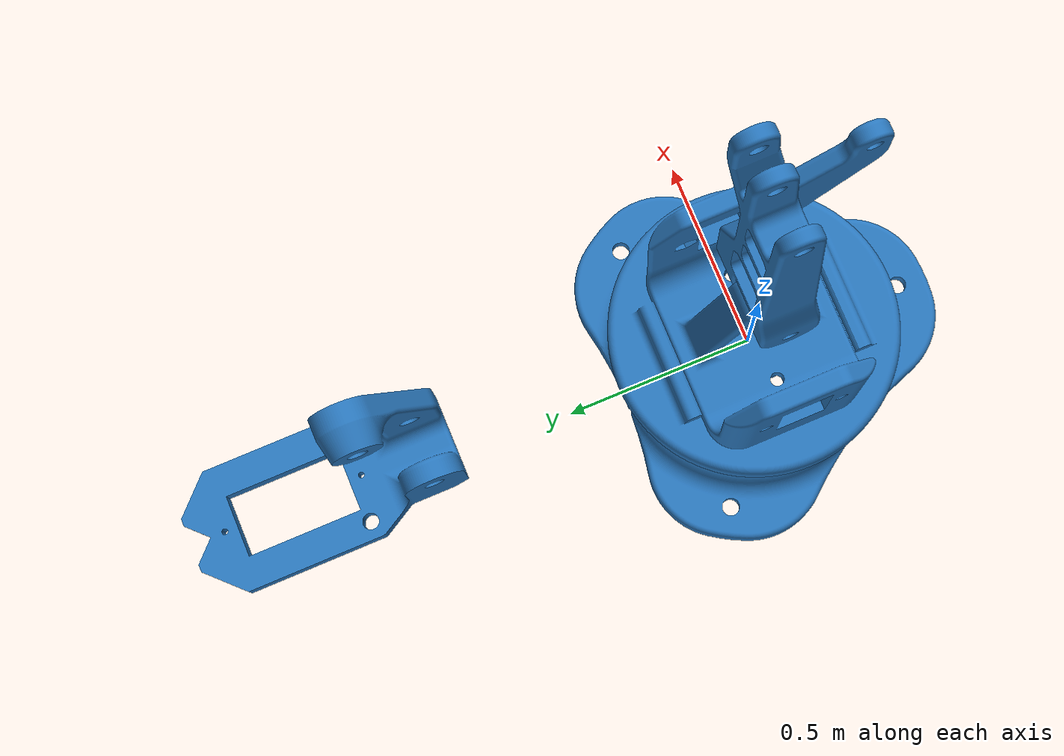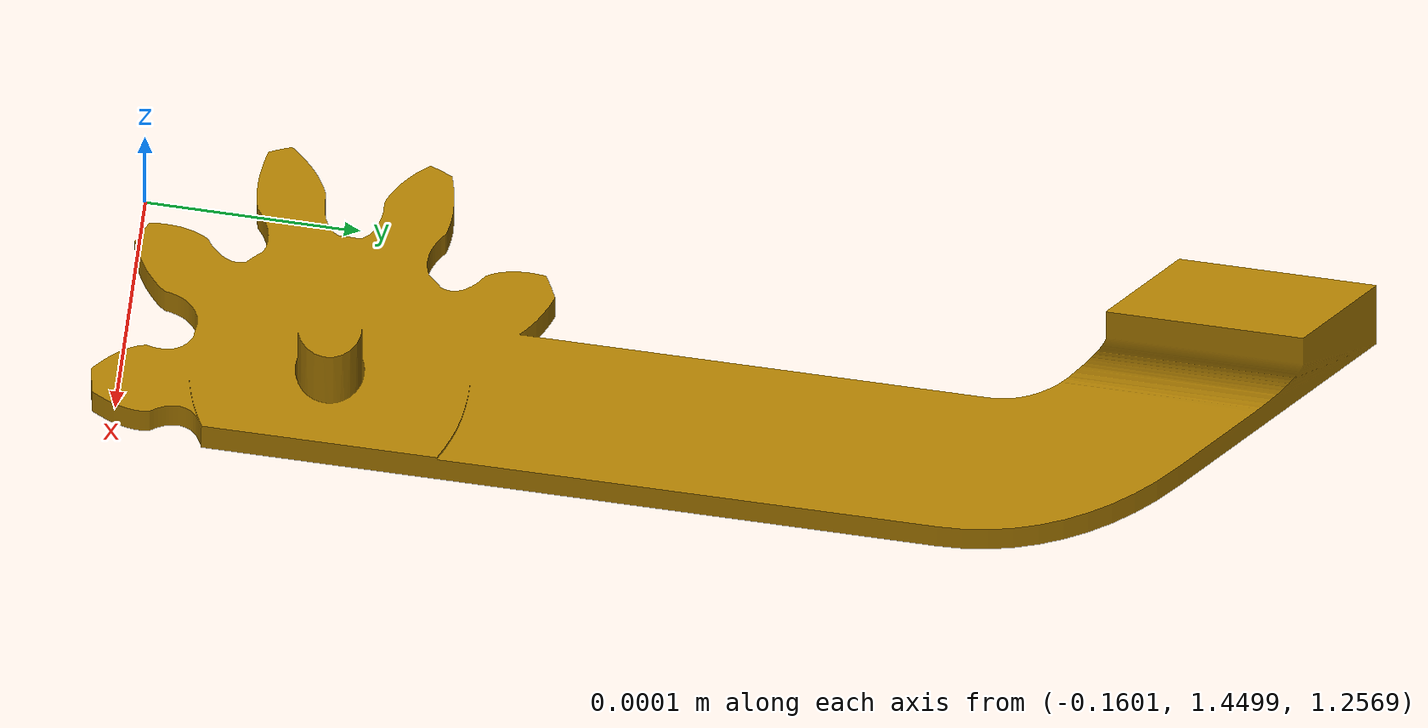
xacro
<?xml version="1.0"?>
<robot xmlns:xacro="http://www.ros.org/wiki/xacro" name="arduinobot">

    <!-- Useful Variables (Properties) -->
    <xacro:property name="PI" value="3.14159265359" />
    <xacro:property name="effort" value="30" />
    <xacro:property name="velocity" value="10" />

    <!--Useful macro -->
    <xacro:macro name ="default_inertial" params = "mass">
        <inertial>
            <mass value="${mass}"/>
            <inertia ixx = "1" iyy = "1" izz = "1" ixy = "0" ixz = "0" iyz = "0" />
        </inertial>
    </xacro:macro>

    <xacro:macro name = "default_transmission" params = "number">
        <transmission name = "joint_${number}">
            <type>transmission_interface/SimpleTransmission</type>
            <joint name = "joint_${number}">
                <hardwareInterface>hardware_interface/PositionJointInterface</hardwareInterface>
            </joint>
            <actuator name ="motor_${number}">
                <hardwareInterface>hardware_interface/PositionJointInterface</hardwareInterface>
                <mechanicalReduction>1</mechanicalReduction>
            </actuator>
        </transmission>
    </xacro:macro>

    <!-- Links -->
    <link name="world"/>

    <link name="base_link">
        <xacro:default_inertial mass = "1"/>
        <visual>
            <origin rpy="0 0 0" xyz="-0.5 -0.5 0"/>
            <geometry>
                <mesh filename="package://arduinobot_description/mesh/basement.STL" scale="0.01 0.01 0.01"/>
            </geometry>
            <material name="bluish" >
                <color rgba="0.1607843137254902 0.4627450980392157 0.7333333333333333 1.0" />
            </material>
        </visual>
        <collision>
            <origin rpy="0 0 0" xyz="-0.5 -0.5 0"/>
            <geometry>
                <mesh filename="package://arduinobot_description/mesh/basement.STL" scale="0.01 0.01 0.01"/>
            </geometry>
            <material name="bluish" >
                <color rgba="0.1607843137254902 0.4627450980392157 0.7333333333333333 1.0" />
            </material>
        </collision>
    </link>

    <link name="base_plate">
        <xacro:default_inertial mass = "0.1"/>
        <visual>
            <origin rpy="0 0 0" xyz="-0.39 -0.39 -0.56"/>
            <geometry>
                <mesh filename="package://arduinobot_description/mesh/base_plate.STL" scale="0.01 0.01 0.01"/>
            </geometry>
            <material name="bluish" >
                <color rgba="0.1607843137254902 0.4627450980392157 0.7333333333333333 1.0" />
            </material>
        </visual>
        <collision>
            <xacro:default_inertial mass = "0.1"/>
            <origin rpy="0 0 0" xyz="-0.39 -0.39 -0.56"/>
            <geometry>
                <mesh filename="package://arduinobot_description/mesh/base_plate.STL" scale="0.01 0.01 0.01"/>
            </geometry>
            <material name="bluish" >
                <color rgba="0.1607843137254902 0.4627450980392157 0.7333333333333333 1.0" />
            </material>
        </collision>
    </link>

    <link name="forward_drive_arm">
        <xacro:default_inertial mass = "0.1"/>
        <visual>
            <origin rpy=" 0 -${PI/2} ${PI/2}" xyz="0.19 0.06 -0.08"/>
            <geometry>
                <mesh filename="package://arduinobot_description/mesh/forward_drive_arm.STL" scale="0.01 0.01 0.01"/>
            </geometry>
            <material name="bluish" >
                <color rgba="0.1607843137254902 0.4627450980392157 0.7333333333333333 1.0" />
            </material>
        </visual>
        <collision>
            <origin rpy=" 0 -${PI/2} ${PI/2}" xyz="0.19 0.06 -0.08"/>
            <geometry>
                <mesh filename="package://arduinobot_description/mesh/forward_drive_arm.STL" scale="0.01 0.01 0.01"/>
            </geometry>
            <material name="bluish" >
                <color rgba="0.1607843137254902 0.4627450980392157 0.7333333333333333 1.0" />
            </material>
        </collision>
    </link>

    <link name="horizontal_arm">
        <xacro:default_inertial mass = "0.1"/>
        <visual>
            <origin rpy="${PI/2} 0 ${PI/2}" xyz="-0.03 -0.4 -0.06"/>
            <geometry>
                <mesh filename="package://arduinobot_description/mesh/horizontal_arm.STL" scale="0.01 0.01 0.01"/>
            </geometry>
            <material name="bluish" >
                <color rgba="0.1607843137254902 0.4627450980392157 0.7333333333333333 1.0" />
            </material>
        </visual>
        <collision>
            <origin rpy="${PI/2} 0 ${PI/2}" xyz="-0.03 -0.4 -0.06"/>
            <geometry>
                <mesh filename="package://arduinobot_description/mesh/horizontal_arm.STL" scale="0.01 0.01 0.01"/>
            </geometry>
            <material name="bluish" >
                <color rgba="0.1607843137254902 0.4627450980392157 0.7333333333333333 1.0" />
            </material>
        </collision>
    </link>

    <link name="claw_support">
        <xacro:default_inertial mass = "0.05"/>
        <visual>
            <origin rpy="0 0 ${PI/2}" xyz="0 -0.05 -0.15"/>
            <geometry>
                <mesh filename="package://arduinobot_description/mesh/claw_support.STL" scale="0.01 0.01 0.01"/>
            </geometry>
            <material name="bluish" >
                <color rgba="0.1607843137254902 0.4627450980392157 0.7333333333333333 1.0" />
            </material>
        </visual>
        <collision>
            <origin rpy="0 0 ${PI/2}" xyz="0 -0.05 -0.15"/>
            <geometry>
                <mesh filename="package://arduinobot_description/mesh/claw_support.STL" scale="0.01 0.01 0.01"/>
            </geometry>
            <material name="bluish" >
                <color rgba="0.1607843137254902 0.4627450980392157 0.7333333333333333 1.0" />
            </material>
        </collision>
    </link>

    <link name="gripper_right">
        <xacro:default_inertial mass = "0.01"/>
        <visual>
            <origin rpy="0 0 -${PI/2}" xyz="-0.1 0.50 -0.1"/>
            <geometry>
                <mesh filename="package://arduinobot_description/mesh/right_finger.STL" scale="0.01 0.01 0.01"/>
            </geometry>
            <material name="bronze" >
                <color rgba="0.6588235294117647 0.4745098039215686 0.0 1.0" />
            </material>
        </visual>
        <collision>
            <origin rpy="0 0 -${PI/2}" xyz="-0.1 0.50 -0.1"/>
            <geometry>
                <mesh filename="package://arduinobot_description/mesh/right_finger.STL" scale="0.01 0.01 0.01"/>
            </geometry>
            <material name="bronze" >
                <color rgba="0.6588235294117647 0.4745098039215686 0.0 1.0" />
            </material>
        </collision>
    </link>

    <link name="gripper_left">
        <visual>
            <xacro:default_inertial mass = "0.01"/>
            <origin rpy="0 0 -${PI/2}" xyz="-0.04 0.50 -0.1"/>
            <geometry>
                <mesh filename="package://arduinobot_description/mesh/left_finger.STL" scale="0.01 0.01 0.01"/>
            </geometry>
            <material name="bronze" >
                <color rgba="0.6588235294117647 0.4745098039215686 0.0 1.0" />
            </material>
        </visual>
        <collision>
            <origin rpy="0 0 -${PI/2}" xyz="-0.04 0.50 -0.1"/>
            <geometry>
                <mesh filename="package://arduinobot_description/mesh/left_finger.STL" scale="0.01 0.01 0.01"/>
            </geometry>
            <material name="bronze" >
                <color rgba="0.6588235294117647 0.4745098039215686 0.0 1.0" />
            </material>
        </collision>
    </link>

    <link name="tool_link"></link>

    <!-- Joints -->
    <joint name="virtual_joint" type="fixed">
        <parent link="world"/>
        <child link="base_link"/>
        <origin xyz="0 0 0" rpy="0 0 0"/>
    </joint>

    <joint name ="joint_1" type="revolute">
        <parent link="base_link"/>
        <child link = "base_plate"/>
        <origin xyz="0 0 0.307"/>
        <axis xyz="0 0 1"/>
        <limit lower="-${PI/2}" upper="${PI/2}" effort="${effort}" velocity="${velocity}"/>
    </joint>

    <joint name ="joint_2" type="revolute">
        <parent link="base_plate"/>
        <child link = "forward_drive_arm"/>
        <origin xyz="-0.02 0 0.35"/>
        <axis xyz="1 0 0"/>
        <limit lower="-${PI/2}" upper="${PI/2}" effort="${effort}" velocity="${velocity}"/>
    </joint>

    <joint name ="joint_3" type="revolute">
        <parent link="forward_drive_arm"/>
        <child link = "horizontal_arm"/>
        <origin xyz="0 0 0.8"/>
        <axis xyz="1 0 0"/>
        <limit lower="-${PI/2}" upper="${PI/2}" effort="${effort}" velocity="${velocity}"/>
    </joint>

    <joint name ="horizontal_arm_to_claw_support" type="fixed">
        <parent link="horizontal_arm"/>
        <child link = "claw_support"/>
        <origin xyz="0 0.82 0"/>
    </joint>

    <joint name ="joint_4" type="revolute">
        <parent link="claw_support"/>
        <child link = "gripper_right"/>
        <origin xyz="-0.04 0.13 -0.1"/>
        <axis xyz="0 0 1"/>
        <limit lower="-${PI/2}" upper="0" effort="${effort}" velocity="${velocity}"/>
    </joint>

    <joint name ="joint_5" type="revolute">
        <parent link="claw_support"/>
        <child link = "gripper_left"/>
        <origin xyz="-0.22 0.13 -0.1"/>
        <axis xyz="0 0 1"/>
        <limit lower="0" upper="${PI/2}" effort="${effort}" velocity="${velocity}"/>
        <mimic joint="joint_4" multiplier="-1" offset="0"/>
    </joint>

    <joint name ="gripper_right_to_tool" type="fixed">
        <parent link="gripper_right"/>
        <child link = "tool_link"/>
        <origin xyz="0 0 0"/>
    </joint>

    <!--Joint_transmission-->
    <xacro:default_transmission number = "1"/>
    <xacro:default_transmission number = "2"/>
    <xacro:default_transmission number = "3"/>
    <xacro:default_transmission number = "4"/>

    <!--gazebo ros_control plugin -->
    <gazebo>
        <plugin name="gazebo_ros_control" filename="libgazebo_ros_control.so">
            <robotNamespace>/arduinobot</robotNamespace>
            <robotSimType>gazebo_ros_control/DefaultRobotHWSim</robotSimType>
            <legacyModeNS>true</legacyModeNS>
        </plugin>

    <!-- gazebo_mimic_joint_plugin -->
        <plugin name = "joint_5_mimic_joint_4" filename = "libroboticsgroup_upatras_gazebo_mimic_joint_plugin.so">
            <joint>joint_4</joint>
            <mimicJoint>joint_5</mimicJoint>
            <multiplier>-1.0</multiplier>
            <offset>0</offset>
            <maxEffort>${effort}</maxEffort>
            <robotNamespace>/arduinobot</robotNamespace>
        </plugin>
    </gazebo>

</robot>
